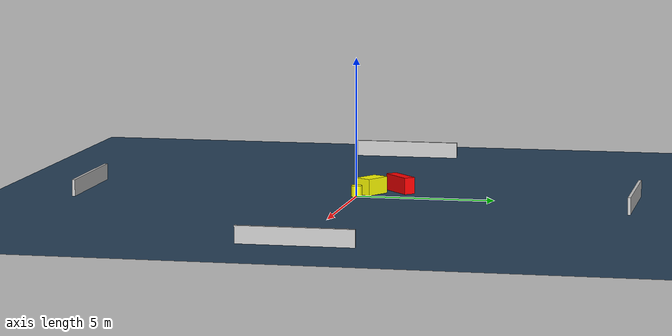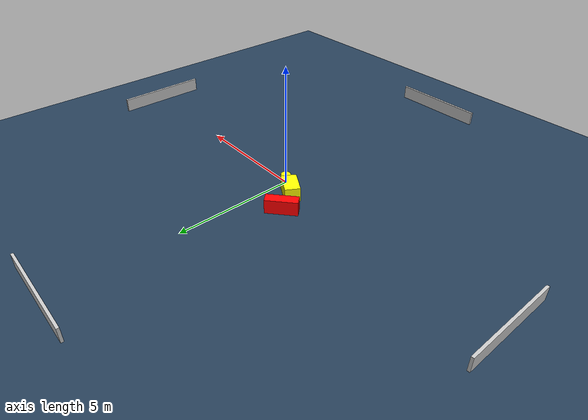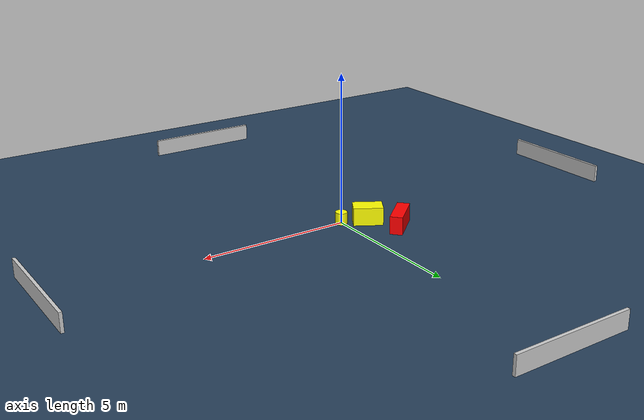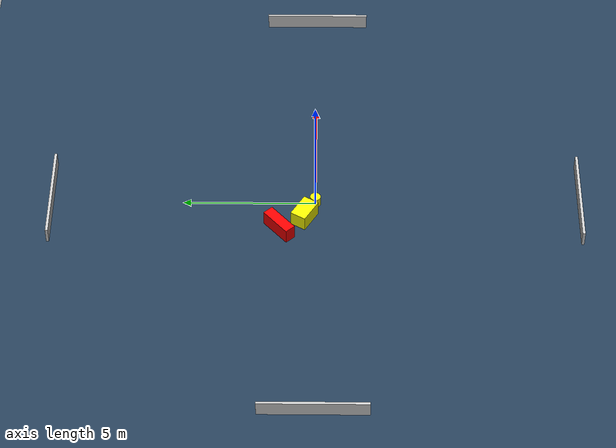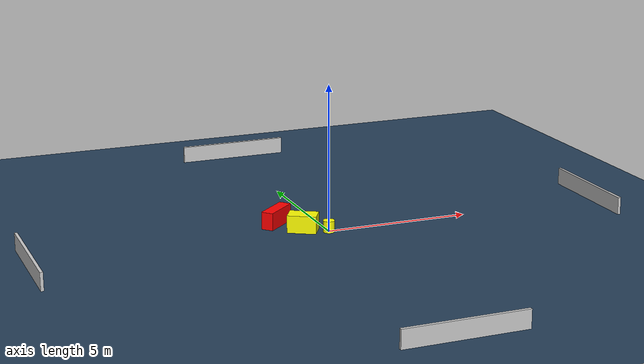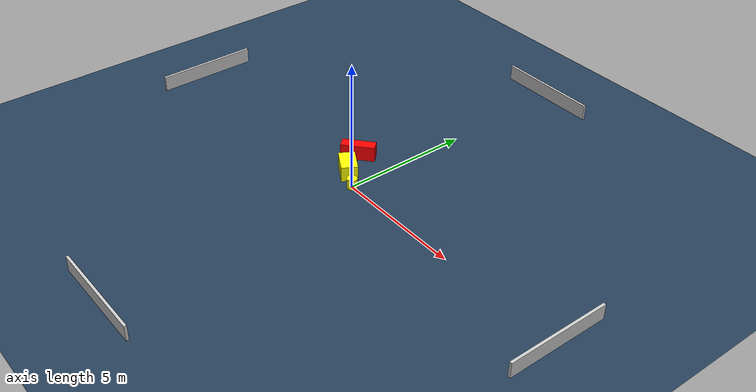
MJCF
<?xml version="1.0" ?>
<mujoco model="generated_environment">
  <option timestep="0.01" integrator="RK4" cone="elliptic"/>
  <default>
    <geom density="1"/>
  </default>
  <asset>
    <texture builtin="gradient" height="3072" name="skybox" rgb1="0.3 0.5 0.7" rgb2="0 0 0" type="skybox" width="512"/>
    <texture builtin="checker" height="300" name="groundplane" rgb1="0.2 0.3 0.4" rgb2="0.1 0.2 0.3" type="2d" width="300"/>
    <material name="groundplane" reflectance="0.2" texrepeat="5 5" texture="groundplane"/>
  </asset>
  <worldbody>
    <light dir="0 0 -1" directional="true" pos="0 0 1.5"/>
    <geom condim="3" friction="0.5 0.005 0.001" material="groundplane" name="floor" pos="0 0 0" size="0 0 0.05" type="plane"/>
    <body name="walls">
      <geom name="wall_1" condim="4" pos="-10.0 0.0 0.3" rgba="0.800000011920929 0.800000011920929 0.800000011920929 1.0" size="0.05 2.0 0.3" type="box"/>
      <geom name="wall_2" condim="4" pos="10.0 0.0 0.3" rgba="0.800000011920929 0.800000011920929 0.800000011920929 1.0" size="0.05 2.0 0.3" type="box"/>
      <geom name="wall_3" condim="4" pos="0.0 -10.0 0.3" rgba="0.800000011920929 0.800000011920929 0.800000011920929 1.0" size="2.0 0.05 0.3" type="box"/>
      <geom name="wall_4" condim="4" pos="0.0 10.0 0.3" rgba="0.800000011920929 0.800000011920929 0.800000011920929 1.0" size="2.0 0.05 0.3" type="box"/>
    </body>
    <body name="robot">
      <joint name="joint_x" type="slide" pos="0 0 0" axis="1 0 0"/>
      <joint name="joint_y" type="slide" pos="0 0 0" axis="0 1 0"/>
      <geom name="robot" type="cylinder" pos="0.0 0.0 0.2" size="0.2 0.2 0.0" mass="5.0" friction="1.0 0.005 0.0001" condim="4" rgba="1.0 1.0 0.0 1.0"/>
    </body>
    <body name="obstacle_1_movable">
      <geom name="obstacle_1_movable" condim="4" pos="-0.7671228962354039 0.40539753367884457 0.3" euler="0 0 239.2332134909225" friction="0.0 0.005 0.001" rgba="1.0 1.0 0.0 1.0" size="0.3100766313487987 0.4911289245874456 0.3" type="box" mass="0.1"/>
      <joint type="free"/>
    </body>
    <body name="obstacle_2_static">
      <geom name="obstacle_2_static" condim="4" pos="-1.3690473517767134 1.3529211733810973 0.3" euler="0 0 131.47626065361393" friction="0.0 0.005 0.001" rgba="1.0 0.0 0.0 1.0" size="0.20970868303276155 0.646857832126577 0.3" type="box"/>
    </body>
  </worldbody>
  <actuator>
    <motor name="actuator_x" joint="joint_x" gear="1" ctrlrange="-1 1"/>
    <motor name="actuator_y" joint="joint_y" gear="1" ctrlrange="-1 1"/>
  </actuator>
</mujoco>
